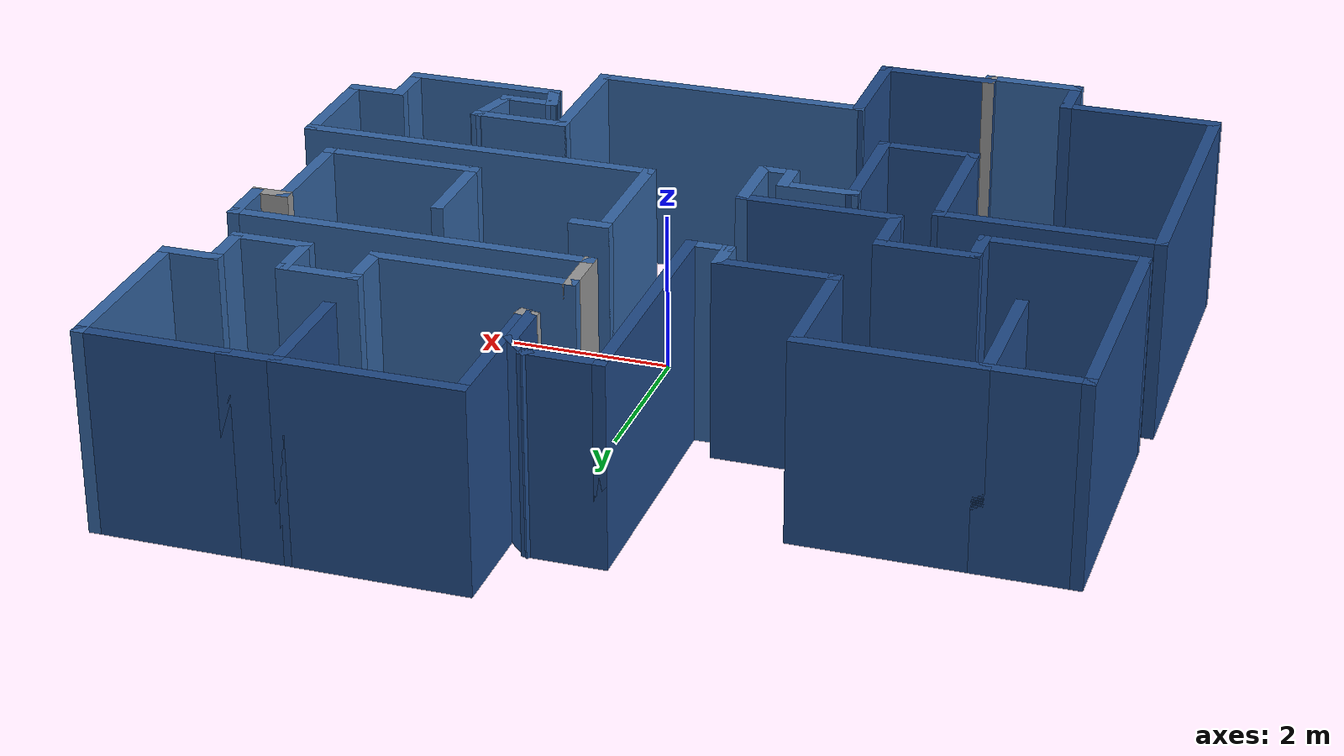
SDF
<?xml version='1.0'?>
<sdf version='1.6'>
  <model name='map_5'>
    <pose frame=''>-0.544386 0.714482 0 0 -0 0</pose>
    <link name='Wall_0'>
      <collision name='Wall_0_Collision'>
        <geometry>
          <box>
            <size>1.5 0.15 2.5</size>
          </box>
        </geometry>
        <pose frame=''>0 0 1.25 0 -0 0</pose>
      </collision>
      <visual name='Wall_0_Visual'>
        <pose frame=''>0 0 1.25 0 -0 0</pose>
        <geometry>
          <box>
            <size>1.5 0.15 2.5</size>
          </box>
        </geometry>
        <material>
          <script>
            <uri>file://media/materials/scripts/gazebo.material</uri>
            <name>Gazebo/Grey</name>
          </script>
          <ambient>0.12549 0.290196 0.529412 1</ambient>
        </material>
        <meta>
          <layer>0</layer>
        </meta>
      </visual>
      <pose frame=''>-1.72204 -4.86332 0 0 -0 3.14159</pose>
    </link>
    <link name='Wall_1'>
      <collision name='Wall_1_Collision'>
        <geometry>
          <box>
            <size>0.25 0.15 2.5</size>
          </box>
        </geometry>
        <pose frame=''>0 0 1.25 0 -0 0</pose>
      </collision>
      <visual name='Wall_1_Visual'>
        <pose frame=''>0 0 1.25 0 -0 0</pose>
        <geometry>
          <box>
            <size>0.25 0.15 2.5</size>
          </box>
        </geometry>
        <material>
          <script>
            <uri>file://media/materials/scripts/gazebo.material</uri>
            <name>Gazebo/Grey</name>
          </script>
          <ambient>1 1 1 1</ambient>
        </material>
        <meta>
          <layer>0</layer>
        </meta>
      </visual>
      <pose frame=''>-2.39704 -4.91331 0 0 -0 -1.5708</pose>
    </link>
    <link name='Wall_10'>
      <collision name='Wall_10_Collision'>
        <geometry>
          <box>
            <size>1 0.15 2.5</size>
          </box>
        </geometry>
        <pose frame=''>0 0 1.25 0 -0 0</pose>
      </collision>
      <visual name='Wall_10_Visual'>
        <pose frame=''>0 0 1.25 0 -0 0</pose>
        <geometry>
          <box>
            <size>1 0.15 2.5</size>
          </box>
        </geometry>
        <material>
          <script>
            <uri>file://media/materials/scripts/gazebo.material</uri>
            <name>Gazebo/Grey</name>
          </script>
          <ambient>0.203922 0.396078 0.643137 1</ambient>
        </material>
        <meta>
          <layer>0</layer>
        </meta>
      </visual>
      <pose frame=''>-1.22204 -1.01331 0 0 -0 0</pose>
    </link>
    <link name='Wall_11'>
      <collision name='Wall_11_Collision'>
        <geometry>
          <box>
            <size>0.5 0.15 2.5</size>
          </box>
        </geometry>
        <pose frame=''>0 0 1.25 0 -0 0</pose>
      </collision>
      <visual name='Wall_11_Visual'>
        <pose frame=''>0 0 1.25 0 -0 0</pose>
        <geometry>
          <box>
            <size>0.5 0.15 2.5</size>
          </box>
        </geometry>
        <material>
          <script>
            <uri>file://media/materials/scripts/gazebo.material</uri>
            <name>Gazebo/Grey</name>
          </script>
          <ambient>0.203922 0.396078 0.643137 1</ambient>
        </material>
        <meta>
          <layer>0</layer>
        </meta>
      </visual>
      <pose frame=''>-0.79704 -1.18832 0 0 -0 -1.5708</pose>
    </link>
    <link name='Wall_12'>
      <collision name='Wall_12_Collision'>
        <geometry>
          <box>
            <size>0.5 0.15 2.5</size>
          </box>
        </geometry>
        <pose frame=''>0 0 1.25 0 -0 0</pose>
      </collision>
      <visual name='Wall_12_Visual'>
        <pose frame=''>0 0 1.25 0 -0 0</pose>
        <geometry>
          <box>
            <size>0.5 0.15 2.5</size>
          </box>
        </geometry>
        <material>
          <script>
            <uri>file://media/materials/scripts/gazebo.material</uri>
            <name>Gazebo/Grey</name>
          </script>
          <ambient>0.203922 0.396078 0.643137 1</ambient>
        </material>
        <meta>
          <layer>0</layer>
        </meta>
      </visual>
      <pose frame=''>-0.62204 -1.36332 0 0 -0 0</pose>
    </link>
    <link name='Wall_13'>
      <collision name='Wall_13_Collision'>
        <geometry>
          <box>
            <size>1 0.15 2.5</size>
          </box>
        </geometry>
        <pose frame=''>0 0 1.25 0 -0 0</pose>
      </collision>
      <visual name='Wall_13_Visual'>
        <pose frame=''>0 0 1.25 0 -0 0</pose>
        <geometry>
          <box>
            <size>1 0.15 2.5</size>
          </box>
        </geometry>
        <material>
          <script>
            <uri>file://media/materials/scripts/gazebo.material</uri>
            <name>Gazebo/Grey</name>
          </script>
          <ambient>0.203922 0.396078 0.643137 1</ambient>
        </material>
        <meta>
          <layer>0</layer>
        </meta>
      </visual>
      <pose frame=''>-0.44704 -0.938315 0 0 -0 1.5708</pose>
    </link>
    <link name='Wall_14'>
      <collision name='Wall_14_Collision'>
        <geometry>
          <box>
            <size>2 0.15 2.5</size>
          </box>
        </geometry>
        <pose frame=''>0 0 1.25 0 -0 0</pose>
      </collision>
      <visual name='Wall_14_Visual'>
        <pose frame=''>0 0 1.25 0 -0 0</pose>
        <geometry>
          <box>
            <size>2 0.15 2.5</size>
          </box>
        </geometry>
        <material>
          <script>
            <uri>file://media/materials/scripts/gazebo.material</uri>
            <name>Gazebo/Grey</name>
          </script>
          <ambient>0.12549 0.290196 0.529412 1</ambient>
        </material>
        <meta>
          <layer>0</layer>
        </meta>
      </visual>
      <pose frame=''>-1.37204 -0.513315 0 0 -0 3.14159</pose>
    </link>
    <link name='Wall_15'>
      <collision name='Wall_15_Collision'>
        <geometry>
          <box>
            <size>0.847049 0.15 2.5</size>
          </box>
        </geometry>
        <pose frame=''>0 0 1.25 0 -0 0</pose>
      </collision>
      <visual name='Wall_15_Visual'>
        <pose frame=''>0 0 1.25 0 -0 0</pose>
        <geometry>
          <box>
            <size>0.847049 0.15 2.5</size>
          </box>
        </geometry>
        <material>
          <script>
            <uri>file://media/materials/scripts/gazebo.material</uri>
            <name>Gazebo/Grey</name>
          </script>
          <ambient>0.12549 0.290196 0.529412 1</ambient>
        </material>
        <meta>
          <layer>0</layer>
        </meta>
      </visual>
      <pose frame=''>-2.29704 -0.164791 0 0 -0 1.5708</pose>
    </link>
    <link name='Wall_16'>
      <collision name='Wall_16_Collision'>
        <geometry>
          <box>
            <size>1.25 0.15 2.5</size>
          </box>
        </geometry>
        <pose frame=''>0 0 1.25 0 -0 0</pose>
      </collision>
      <visual name='Wall_16_Visual'>
        <pose frame=''>0 0 1.25 0 -0 0</pose>
        <geometry>
          <box>
            <size>1.25 0.15 2.5</size>
          </box>
        </geometry>
        <material>
          <script>
            <uri>file://media/materials/scripts/gazebo.material</uri>
            <name>Gazebo/Grey</name>
          </script>
          <ambient>0.12549 0.290196 0.529412 1</ambient>
        </material>
        <meta>
          <layer>0</layer>
        </meta>
      </visual>
      <pose frame=''>-2.84704 0.214324 0 0 -0 3.14159</pose>
    </link>
    <link name='Wall_17'>
      <collision name='Wall_17_Collision'>
        <geometry>
          <box>
            <size>0.597049 0.15 2.5</size>
          </box>
        </geometry>
        <pose frame=''>0 0 1.25 0 -0 0</pose>
      </collision>
      <visual name='Wall_17_Visual'>
        <pose frame=''>0 0 1.25 0 -0 0</pose>
        <geometry>
          <box>
            <size>0.597049 0.15 2.5</size>
          </box>
        </geometry>
        <material>
          <script>
            <uri>file://media/materials/scripts/gazebo.material</uri>
            <name>Gazebo/Grey</name>
          </script>
          <ambient>0.12549 0.290196 0.529412 1</ambient>
        </material>
        <meta>
          <layer>0</layer>
        </meta>
      </visual>
      <pose frame=''>-3.39704 -0.039791 0 0 -0 -1.5708</pose>
    </link>
    <link name='Wall_18'>
      <collision name='Wall_18_Collision'>
        <geometry>
          <box>
            <size>2 0.15 2.5</size>
          </box>
        </geometry>
        <pose frame=''>0 0 1.25 0 -0 0</pose>
      </collision>
      <visual name='Wall_18_Visual'>
        <pose frame=''>0 0 1.25 0 -0 0</pose>
        <geometry>
          <box>
            <size>2 0.15 2.5</size>
          </box>
        </geometry>
        <material>
          <script>
            <uri>file://media/materials/scripts/gazebo.material</uri>
            <name>Gazebo/Grey</name>
          </script>
          <ambient>0.12549 0.290196 0.529412 1</ambient>
        </material>
        <meta>
          <layer>0</layer>
        </meta>
      </visual>
      <pose frame=''>-4.32204 -0.263315 0 0 -0 3.14159</pose>
    </link>
    <link name='Wall_19'>
      <collision name='Wall_19_Collision'>
        <geometry>
          <box>
            <size>3.25 0.15 2.5</size>
          </box>
        </geometry>
        <pose frame=''>0 0 1.25 0 -0 0</pose>
      </collision>
      <visual name='Wall_19_Visual'>
        <pose frame=''>0 0 1.25 0 -0 0</pose>
        <geometry>
          <box>
            <size>3.25 0.15 2.5</size>
          </box>
        </geometry>
        <material>
          <script>
            <uri>file://media/materials/scripts/gazebo.material</uri>
            <name>Gazebo/Grey</name>
          </script>
          <ambient>0.12549 0.290196 0.529412 1</ambient>
        </material>
        <meta>
          <layer>0</layer>
        </meta>
      </visual>
      <pose frame=''>-5.24704 1.28669 0 0 -0 1.5708</pose>
    </link>
    <link name='Wall_2'>
      <collision name='Wall_2_Collision'>
        <geometry>
          <box>
            <size>1.25 0.15 2.5</size>
          </box>
        </geometry>
        <pose frame=''>0 0 1.25 0 -0 0</pose>
      </collision>
      <visual name='Wall_2_Visual'>
        <pose frame=''>0 0 1.25 0 -0 0</pose>
        <geometry>
          <box>
            <size>1.25 0.15 2.5</size>
          </box>
        </geometry>
        <material>
          <script>
            <uri>file://media/materials/scripts/gazebo.material</uri>
            <name>Gazebo/Grey</name>
          </script>
          <ambient>0.203922 0.396078 0.643137 1</ambient>
        </material>
        <meta>
          <layer>0</layer>
        </meta>
      </visual>
      <pose frame=''>-2.94704 -4.96331 0 0 -0 3.14159</pose>
    </link>
    <link name='Wall_20'>
      <collision name='Wall_20_Collision'>
        <geometry>
          <box>
            <size>1.27531 0.15 2.5</size>
          </box>
        </geometry>
        <pose frame=''>0 0 1.25 0 -0 0</pose>
      </collision>
      <visual name='Wall_20_Visual'>
        <pose frame=''>0 0 1.25 0 -0 0</pose>
        <geometry>
          <box>
            <size>1.27531 0.15 2.5</size>
          </box>
        </geometry>
        <material>
          <script>
            <uri>file://media/materials/scripts/gazebo.material</uri>
            <name>Gazebo/Grey</name>
          </script>
          <ambient>0.12549 0.290196 0.529412 1</ambient>
        </material>
        <meta>
          <layer>0</layer>
        </meta>
      </visual>
      <pose frame=''>-4.68438 2.83669 0 0 -0 0</pose>
    </link>
    <link name='Wall_21'>
      <collision name='Wall_21_Collision'>
        <geometry>
          <box>
            <size>1.75 0.15 2.5</size>
          </box>
        </geometry>
        <pose frame=''>0 0 1.25 0 -0 0</pose>
      </collision>
      <visual name='Wall_21_Visual'>
        <pose frame=''>0 0 1.25 0 -0 0</pose>
        <geometry>
          <box>
            <size>1.75 0.15 2.5</size>
          </box>
        </geometry>
        <material>
          <script>
            <uri>file://media/materials/scripts/gazebo.material</uri>
            <name>Gazebo/Grey</name>
          </script>
          <ambient>0.12549 0.290196 0.529412 1</ambient>
        </material>
        <meta>
          <layer>0</layer>
        </meta>
      </visual>
      <pose frame=''>-4.15232 2.03668 0 0 -0 -1.5708</pose>
    </link>
    <link name='Wall_23'>
      <collision name='Wall_23_Collision'>
        <geometry>
          <box>
            <size>2.22469 0.15 2.5</size>
          </box>
        </geometry>
        <pose frame=''>0 0 1.25 0 -0 0</pose>
      </collision>
      <visual name='Wall_23_Visual'>
        <pose frame=''>0 0 1.25 0 -0 0</pose>
        <geometry>
          <box>
            <size>2.22469 0.15 2.5</size>
          </box>
        </geometry>
        <material>
          <script>
            <uri>file://media/materials/scripts/gazebo.material</uri>
            <name>Gazebo/Grey</name>
          </script>
          <ambient>0.12549 0.290196 0.529412 1</ambient>
        </material>
        <meta>
          <layer>0</layer>
        </meta>
      </visual>
      <pose frame=''>-3.08438 2.83669 0 0 -0 0</pose>
    </link>
    <link name='Wall_27'>
      <collision name='Wall_27_Collision'>
        <geometry>
          <box>
            <size>1.75 0.15 2.5</size>
          </box>
        </geometry>
        <pose frame=''>0 0 1.25 0 -0 0</pose>
      </collision>
      <visual name='Wall_27_Visual'>
        <pose frame=''>0 0 1.25 0 -0 0</pose>
        <geometry>
          <box>
            <size>1.75 0.15 2.5</size>
          </box>
        </geometry>
        <material>
          <script>
            <uri>file://media/materials/scripts/gazebo.material</uri>
            <name>Gazebo/Grey</name>
          </script>
          <ambient>0.12549 0.290196 0.529412 1</ambient>
        </material>
        <meta>
          <layer>0</layer>
        </meta>
      </visual>
      <pose frame=''>-2.04704 2.03668 0 0 -0 -1.5708</pose>
    </link>
    <link name='Wall_28'>
      <collision name='Wall_28_Collision'>
        <geometry>
          <box>
            <size>1.5 0.15 2.5</size>
          </box>
        </geometry>
        <pose frame=''>0 0 1.25 0 -0 0</pose>
      </collision>
      <visual name='Wall_28_Visual'>
        <pose frame=''>0 0 1.25 0 -0 0</pose>
        <geometry>
          <box>
            <size>1.5 0.15 2.5</size>
          </box>
        </geometry>
        <material>
          <script>
            <uri>file://media/materials/scripts/gazebo.material</uri>
            <name>Gazebo/Grey</name>
          </script>
          <ambient>0.12549 0.290196 0.529412 1</ambient>
        </material>
        <meta>
          <layer>0</layer>
        </meta>
      </visual>
      <pose frame=''>-1.37204 1.23669 0 0 -0 0</pose>
    </link>
    <link name='Wall_29'>
      <collision name='Wall_29_Collision'>
        <geometry>
          <box>
            <size>0.5 0.15 2.5</size>
          </box>
        </geometry>
        <pose frame=''>0 0 1.25 0 -0 0</pose>
      </collision>
      <visual name='Wall_29_Visual'>
        <pose frame=''>0 0 1.25 0 -0 0</pose>
        <geometry>
          <box>
            <size>0.5 0.15 2.5</size>
          </box>
        </geometry>
        <material>
          <script>
            <uri>file://media/materials/scripts/gazebo.material</uri>
            <name>Gazebo/Grey</name>
          </script>
          <ambient>0.203922 0.396078 0.643137 1</ambient>
        </material>
        <meta>
          <layer>0</layer>
        </meta>
      </visual>
      <pose frame=''>-0.69704 1.06168 0 0 -0 -1.5708</pose>
    </link>
    <link name='Wall_3'>
      <collision name='Wall_3_Collision'>
        <geometry>
          <box>
            <size>0.75 0.15 2.5</size>
          </box>
        </geometry>
        <pose frame=''>0 0 1.25 0 -0 0</pose>
      </collision>
      <visual name='Wall_3_Visual'>
        <pose frame=''>0 0 1.25 0 -0 0</pose>
        <geometry>
          <box>
            <size>0.75 0.15 2.5</size>
          </box>
        </geometry>
        <material>
          <script>
            <uri>file://media/materials/scripts/gazebo.material</uri>
            <name>Gazebo/Grey</name>
          </script>
          <ambient>0.12549 0.290196 0.529412 1</ambient>
        </material>
        <meta>
          <layer>0</layer>
        </meta>
      </visual>
      <pose frame=''>-3.49704 -4.66331 0 0 -0 1.5708</pose>
    </link>
    <link name='Wall_30'>
      <collision name='Wall_30_Collision'>
        <geometry>
          <box>
            <size>0.25 0.15 2.5</size>
          </box>
        </geometry>
        <pose frame=''>0 0 1.25 0 -0 0</pose>
      </collision>
      <visual name='Wall_30_Visual'>
        <pose frame=''>0 0 1.25 0 -0 0</pose>
        <geometry>
          <box>
            <size>0.25 0.15 2.5</size>
          </box>
        </geometry>
        <material>
          <script>
            <uri>file://media/materials/scripts/gazebo.material</uri>
            <name>Gazebo/Grey</name>
          </script>
          <ambient>0.203922 0.396078 0.643137 1</ambient>
        </material>
        <meta>
          <layer>0</layer>
        </meta>
      </visual>
      <pose frame=''>-0.64704 0.886685 0 0 -0 0</pose>
    </link>
    <link name='Wall_31'>
      <collision name='Wall_31_Collision'>
        <geometry>
          <box>
            <size>0.5 0.15 2.5</size>
          </box>
        </geometry>
        <pose frame=''>0 0 1.25 0 -0 0</pose>
      </collision>
      <visual name='Wall_31_Visual'>
        <pose frame=''>0 0 1.25 0 -0 0</pose>
        <geometry>
          <box>
            <size>0.5 0.15 2.5</size>
          </box>
        </geometry>
        <material>
          <script>
            <uri>file://media/materials/scripts/gazebo.material</uri>
            <name>Gazebo/Grey</name>
          </script>
          <ambient>0.203922 0.396078 0.643137 1</ambient>
        </material>
        <meta>
          <layer>0</layer>
        </meta>
      </visual>
      <pose frame=''>-0.42204 0.886685 0 0 -0 0</pose>
    </link>
    <link name='Wall_32'>
      <collision name='Wall_32_Collision'>
        <geometry>
          <box>
            <size>3.25 0.15 2.5</size>
          </box>
        </geometry>
        <pose frame=''>0 0 1.25 0 -0 0</pose>
      </collision>
      <visual name='Wall_32_Visual'>
        <pose frame=''>0 0 1.25 0 -0 0</pose>
        <geometry>
          <box>
            <size>3.25 0.15 2.5</size>
          </box>
        </geometry>
        <material>
          <script>
            <uri>file://media/materials/scripts/gazebo.material</uri>
            <name>Gazebo/Grey</name>
          </script>
          <ambient>0.12549 0.290196 0.529412 1</ambient>
        </material>
        <meta>
          <layer>0</layer>
        </meta>
      </visual>
      <pose frame=''>-0.24704 2.43669 0 0 -0 1.5708</pose>
    </link>
    <link name='Wall_33'>
      <collision name='Wall_33_Collision'>
        <geometry>
          <box>
            <size>1 0.15 2.5</size>
          </box>
        </geometry>
        <pose frame=''>0 0 1.25 0 -0 0</pose>
      </collision>
      <visual name='Wall_33_Visual'>
        <pose frame=''>0 0 1.25 0 -0 0</pose>
        <geometry>
          <box>
            <size>1 0.15 2.5</size>
          </box>
        </geometry>
        <material>
          <script>
            <uri>file://media/materials/scripts/gazebo.material</uri>
            <name>Gazebo/Grey</name>
          </script>
          <ambient>0.12549 0.290196 0.529412 1</ambient>
        </material>
        <meta>
          <layer>0</layer>
        </meta>
      </visual>
      <pose frame=''>0.17796 3.98669 0 0 -0 0</pose>
    </link>
    <link name='Wall_34'>
      <collision name='Wall_34_Collision'>
        <geometry>
          <box>
            <size>0.5 0.15 2.5</size>
          </box>
        </geometry>
        <pose frame=''>0 0 1.25 0 -0 0</pose>
      </collision>
      <visual name='Wall_34_Visual'>
        <pose frame=''>0 0 1.25 0 -0 0</pose>
        <geometry>
          <box>
            <size>0.5 0.15 2.5</size>
          </box>
        </geometry>
        <material>
          <script>
            <uri>file://media/materials/scripts/gazebo.material</uri>
            <name>Gazebo/Grey</name>
          </script>
          <ambient>0.12549 0.290196 0.529412 1</ambient>
        </material>
        <meta>
          <layer>0</layer>
        </meta>
      </visual>
      <pose frame=''>0.726704 3.86294 0 0 -0 -0.785398</pose>
    </link>
    <link name='Wall_35'>
      <collision name='Wall_35_Collision'>
        <geometry>
          <box>
            <size>0.75 0.15 2.5</size>
          </box>
        </geometry>
        <pose frame=''>0 0 1.25 0 -0 0</pose>
      </collision>
      <visual name='Wall_35_Visual'>
        <pose frame=''>0 0 1.25 0 -0 0</pose>
        <geometry>
          <box>
            <size>0.75 0.15 2.5</size>
          </box>
        </geometry>
        <material>
          <script>
            <uri>file://media/materials/scripts/gazebo.material</uri>
            <name>Gazebo/Grey</name>
          </script>
          <ambient>0.12549 0.290196 0.529412 1</ambient>
        </material>
        <meta>
          <layer>0</layer>
        </meta>
      </visual>
      <pose frame=''>0.850447 3.4392 0 0 -0 -1.5708</pose>
    </link>
    <link name='Wall_36'>
      <collision name='Wall_36_Collision'>
        <geometry>
          <box>
            <size>0.25 0.15 2.5</size>
          </box>
        </geometry>
        <pose frame=''>0 0 1.25 0 -0 0</pose>
      </collision>
      <visual name='Wall_36_Visual'>
        <pose frame=''>0 0 1.25 0 -0 0</pose>
        <geometry>
          <box>
            <size>0.25 0.15 2.5</size>
          </box>
        </geometry>
        <material>
          <script>
            <uri>file://media/materials/scripts/gazebo.material</uri>
            <name>Gazebo/Grey</name>
          </script>
          <ambient>1 1 1 1</ambient>
        </material>
        <meta>
          <layer>0</layer>
        </meta>
      </visual>
      <pose frame=''>0.898744 3.12626 0 0 -0 -0.261799</pose>
    </link>
    <link name='Wall_37'>
      <collision name='Wall_37_Collision'>
        <geometry>
          <box>
            <size>2 0.15 2.5</size>
          </box>
        </geometry>
        <pose frame=''>0 0 1.25 0 -0 0</pose>
      </collision>
      <visual name='Wall_37_Visual'>
        <pose frame=''>0 0 1.25 0 -0 0</pose>
        <geometry>
          <box>
            <size>2 0.15 2.5</size>
          </box>
        </geometry>
        <material>
          <script>
            <uri>file://media/materials/scripts/gazebo.material</uri>
            <name>Gazebo/Grey</name>
          </script>
          <ambient>0.12549 0.290196 0.529412 1</ambient>
        </material>
        <meta>
          <layer>0</layer>
        </meta>
      </visual>
      <pose frame=''>0.94704 4.03831 0 0 -0 1.5708</pose>
    </link>
    <link name='Wall_38'>
      <collision name='Wall_38_Collision'>
        <geometry>
          <box>
            <size>2.25 0.15 2.5</size>
          </box>
        </geometry>
        <pose frame=''>0 0 1.25 0 -0 0</pose>
      </collision>
      <visual name='Wall_38_Visual'>
        <pose frame=''>0 0 1.25 0 -0 0</pose>
        <geometry>
          <box>
            <size>2.25 0.15 2.5</size>
          </box>
        </geometry>
        <material>
          <script>
            <uri>file://media/materials/scripts/gazebo.material</uri>
            <name>Gazebo/Grey</name>
          </script>
          <ambient>0.12549 0.290196 0.529412 1</ambient>
        </material>
        <meta>
          <layer>0</layer>
        </meta>
      </visual>
      <pose frame=''>1.99704 4.96331 0 0 -0 0</pose>
    </link>
    <link name='Wall_39'>
      <collision name='Wall_39_Collision'>
        <geometry>
          <box>
            <size>1.5 0.15 2.5</size>
          </box>
        </geometry>
        <pose frame=''>0 0 1.25 0 -0 0</pose>
      </collision>
      <visual name='Wall_39_Visual'>
        <pose frame=''>0 0 1.25 0 -0 0</pose>
        <geometry>
          <box>
            <size>1.5 0.15 2.5</size>
          </box>
        </geometry>
        <material>
          <script>
            <uri>file://media/materials/scripts/gazebo.material</uri>
            <name>Gazebo/Grey</name>
          </script>
          <ambient>0.12549 0.290196 0.529412 1</ambient>
        </material>
        <meta>
          <layer>0</layer>
        </meta>
      </visual>
      <pose frame=''>3.04704 4.28831 0 0 -0 -1.5708</pose>
    </link>
    <link name='Wall_4'>
      <collision name='Wall_4_Collision'>
        <geometry>
          <box>
            <size>2 0.15 2.5</size>
          </box>
        </geometry>
        <pose frame=''>0 0 1.25 0 -0 0</pose>
      </collision>
      <visual name='Wall_4_Visual'>
        <pose frame=''>0 0 1.25 0 -0 0</pose>
        <geometry>
          <box>
            <size>2 0.15 2.5</size>
          </box>
        </geometry>
        <material>
          <script>
            <uri>file://media/materials/scripts/gazebo.material</uri>
            <name>Gazebo/Grey</name>
          </script>
          <ambient>0.12549 0.290196 0.529412 1</ambient>
        </material>
        <meta>
          <layer>0</layer>
        </meta>
      </visual>
      <pose frame=''>-4.42204 -4.36332 0 0 -0 3.14159</pose>
    </link>
    <link name='Wall_41'>
      <collision name='Wall_41_Collision'>
        <geometry>
          <box>
            <size>0.75 0.15 2.5</size>
          </box>
        </geometry>
        <pose frame=''>0 0 1.25 0 -0 0</pose>
      </collision>
      <visual name='Wall_41_Visual'>
        <pose frame=''>0 0 1.25 0 -0 0</pose>
        <geometry>
          <box>
            <size>0.75 0.15 2.5</size>
          </box>
        </geometry>
        <material>
          <script>
            <uri>file://media/materials/scripts/gazebo.material</uri>
            <name>Gazebo/Grey</name>
          </script>
          <ambient>0.12549 0.290196 0.529412 1</ambient>
        </material>
        <meta>
          <layer>0</layer>
        </meta>
      </visual>
      <pose frame=''>3.34704 4.96331 0 0 -0 0</pose>
    </link>
    <link name='Wall_46'>
      <collision name='Wall_46_Collision'>
        <geometry>
          <box>
            <size>2.25 0.15 2.5</size>
          </box>
        </geometry>
        <pose frame=''>0 0 1.25 0 -0 0</pose>
      </collision>
      <visual name='Wall_46_Visual'>
        <pose frame=''>0 0 1.25 0 -0 0</pose>
        <geometry>
          <box>
            <size>2.25 0.15 2.5</size>
          </box>
        </geometry>
        <material>
          <script>
            <uri>file://media/materials/scripts/gazebo.material</uri>
            <name>Gazebo/Grey</name>
          </script>
          <ambient>0.203922 0.396078 0.643137 1</ambient>
        </material>
        <meta>
          <layer>0</layer>
        </meta>
      </visual>
      <pose frame=''>5.34704 3.91331 0 0 -0 -1.5708</pose>
    </link>
    <link name='Wall_47'>
      <collision name='Wall_47_Collision'>
        <geometry>
          <box>
            <size>0.75 0.15 2.5</size>
          </box>
        </geometry>
        <pose frame=''>0 0 1.25 0 -0 0</pose>
      </collision>
      <visual name='Wall_47_Visual'>
        <pose frame=''>0 0 1.25 0 -0 0</pose>
        <geometry>
          <box>
            <size>0.75 0.15 2.5</size>
          </box>
        </geometry>
        <material>
          <script>
            <uri>file://media/materials/scripts/gazebo.material</uri>
            <name>Gazebo/Grey</name>
          </script>
          <ambient>0.203922 0.396078 0.643137 1</ambient>
        </material>
        <meta>
          <layer>0</layer>
        </meta>
      </visual>
      <pose frame=''>5.04704 2.86332 0 0 -0 3.14159</pose>
    </link>
    <link name='Wall_48'>
      <collision name='Wall_48_Collision'>
        <geometry>
          <box>
            <size>0.75 0.15 2.5</size>
          </box>
        </geometry>
        <pose frame=''>0 0 1.25 0 -0 0</pose>
      </collision>
      <visual name='Wall_48_Visual'>
        <pose frame=''>0 0 1.25 0 -0 0</pose>
        <geometry>
          <box>
            <size>0.75 0.15 2.5</size>
          </box>
        </geometry>
        <material>
          <script>
            <uri>file://media/materials/scripts/gazebo.material</uri>
            <name>Gazebo/Grey</name>
          </script>
          <ambient>0.203922 0.396078 0.643137 1</ambient>
        </material>
        <meta>
          <layer>0</layer>
        </meta>
      </visual>
      <pose frame=''>4.74704 2.56331 0 0 -0 -1.5708</pose>
    </link>
    <link name='Wall_49'>
      <collision name='Wall_49_Collision'>
        <geometry>
          <box>
            <size>1 0.15 2.5</size>
          </box>
        </geometry>
        <pose frame=''>0 0 1.25 0 -0 0</pose>
      </collision>
      <visual name='Wall_49_Visual'>
        <pose frame=''>0 0 1.25 0 -0 0</pose>
        <geometry>
          <box>
            <size>1 0.15 2.5</size>
          </box>
        </geometry>
        <material>
          <script>
            <uri>file://media/materials/scripts/gazebo.material</uri>
            <name>Gazebo/Grey</name>
          </script>
          <ambient>0.203922 0.396078 0.643137 1</ambient>
        </material>
        <meta>
          <layer>0</layer>
        </meta>
      </visual>
      <pose frame=''>4.32204 2.26331 0 0 -0 3.14159</pose>
    </link>
    <link name='Wall_5'>
      <collision name='Wall_5_Collision'>
        <geometry>
          <box>
            <size>3.75 0.15 2.5</size>
          </box>
        </geometry>
        <pose frame=''>0 0 1.25 0 -0 0</pose>
      </collision>
      <visual name='Wall_5_Visual'>
        <pose frame=''>0 0 1.25 0 -0 0</pose>
        <geometry>
          <box>
            <size>3.75 0.15 2.5</size>
          </box>
        </geometry>
        <material>
          <script>
            <uri>file://media/materials/scripts/gazebo.material</uri>
            <name>Gazebo/Grey</name>
          </script>
          <ambient>0.12549 0.290196 0.529412 1</ambient>
        </material>
        <meta>
          <layer>0</layer>
        </meta>
      </visual>
      <pose frame=''>-5.34704 -2.56331 0 0 -0 1.5708</pose>
    </link>
    <link name='Wall_50'>
      <collision name='Wall_50_Collision'>
        <geometry>
          <box>
            <size>0.75 0.15 2.5</size>
          </box>
        </geometry>
        <pose frame=''>0 0 1.25 0 -0 0</pose>
      </collision>
      <visual name='Wall_50_Visual'>
        <pose frame=''>0 0 1.25 0 -0 0</pose>
        <geometry>
          <box>
            <size>0.75 0.15 2.5</size>
          </box>
        </geometry>
        <material>
          <script>
            <uri>file://media/materials/scripts/gazebo.material</uri>
            <name>Gazebo/Grey</name>
          </script>
          <ambient>0.203922 0.396078 0.643137 1</ambient>
        </material>
        <meta>
          <layer>0</layer>
        </meta>
      </visual>
      <pose frame=''>3.89704 2.56331 0 0 -0 1.5708</pose>
    </link>
    <link name='Wall_51'>
      <collision name='Wall_51_Collision'>
        <geometry>
          <box>
            <size>1 0.15 2.5</size>
          </box>
        </geometry>
        <pose frame=''>0 0 1.25 0 -0 0</pose>
      </collision>
      <visual name='Wall_51_Visual'>
        <pose frame=''>0 0 1.25 0 -0 0</pose>
        <geometry>
          <box>
            <size>1 0.15 2.5</size>
          </box>
        </geometry>
        <material>
          <script>
            <uri>file://media/materials/scripts/gazebo.material</uri>
            <name>Gazebo/Grey</name>
          </script>
          <ambient>0.203922 0.396078 0.643137 1</ambient>
        </material>
        <meta>
          <layer>0</layer>
        </meta>
      </visual>
      <pose frame=''>3.47204 2.86332 0 0 -0 3.14159</pose>
    </link>
    <link name='Wall_52'>
      <collision name='Wall_52_Collision'>
        <geometry>
          <box>
            <size>0.75 0.15 2.5</size>
          </box>
        </geometry>
        <pose frame=''>0 0 1.25 0 -0 0</pose>
      </collision>
      <visual name='Wall_52_Visual'>
        <pose frame=''>0 0 1.25 0 -0 0</pose>
        <geometry>
          <box>
            <size>0.75 0.15 2.5</size>
          </box>
        </geometry>
        <material>
          <script>
            <uri>file://media/materials/scripts/gazebo.material</uri>
            <name>Gazebo/Grey</name>
          </script>
          <ambient>0.203922 0.396078 0.643137 1</ambient>
        </material>
        <meta>
          <layer>0</layer>
        </meta>
      </visual>
      <pose frame=''>3.04704 2.56331 0 0 -0 -1.5708</pose>
    </link>
    <link name='Wall_53'>
      <collision name='Wall_53_Collision'>
        <geometry>
          <box>
            <size>2.5 0.15 2.5</size>
          </box>
        </geometry>
        <pose frame=''>0 0 1.25 0 -0 0</pose>
      </collision>
      <visual name='Wall_53_Visual'>
        <pose frame=''>0 0 1.25 0 -0 0</pose>
        <geometry>
          <box>
            <size>2.5 0.15 2.5</size>
          </box>
        </geometry>
        <material>
          <script>
            <uri>file://media/materials/scripts/gazebo.material</uri>
            <name>Gazebo/Grey</name>
          </script>
          <ambient>0.203922 0.396078 0.643137 1</ambient>
        </material>
        <meta>
          <layer>0</layer>
        </meta>
      </visual>
      <pose frame=''>1.87204 2.26331 0 0 -0 3.14159</pose>
    </link>
    <link name='Wall_54'>
      <collision name='Wall_54_Collision'>
        <geometry>
          <box>
            <size>0.75 0.15 2.5</size>
          </box>
        </geometry>
        <pose frame=''>0 0 1.25 0 -0 0</pose>
      </collision>
      <visual name='Wall_54_Visual'>
        <pose frame=''>0 0 1.25 0 -0 0</pose>
        <geometry>
          <box>
            <size>0.75 0.15 2.5</size>
          </box>
        </geometry>
        <material>
          <script>
            <uri>file://media/materials/scripts/gazebo.material</uri>
            <name>Gazebo/Grey</name>
          </script>
          <ambient>1 1 1 1</ambient>
        </material>
        <meta>
          <layer>0</layer>
        </meta>
      </visual>
      <pose frame=''>0.69704 1.96331 0 0 -0 -1.5708</pose>
    </link>
    <link name='Wall_55'>
      <collision name='Wall_55_Collision'>
        <geometry>
          <box>
            <size>4.5 0.15 2.5</size>
          </box>
        </geometry>
        <pose frame=''>0 0 1.25 0 -0 0</pose>
      </collision>
      <visual name='Wall_55_Visual'>
        <pose frame=''>0 0 1.25 0 -0 0</pose>
        <geometry>
          <box>
            <size>4.5 0.15 2.5</size>
          </box>
        </geometry>
        <material>
          <script>
            <uri>file://media/materials/scripts/gazebo.material</uri>
            <name>Gazebo/Grey</name>
          </script>
          <ambient>0.203922 0.396078 0.643137 1</ambient>
        </material>
        <meta>
          <layer>0</layer>
        </meta>
      </visual>
      <pose frame=''>2.87204 1.66332 0 0 -0 0</pose>
    </link>
    <link name='Wall_56'>
      <collision name='Wall_56_Collision'>
        <geometry>
          <box>
            <size>0.75 0.15 2.5</size>
          </box>
        </geometry>
        <pose frame=''>0 0 1.25 0 -0 0</pose>
      </collision>
      <visual name='Wall_56_Visual'>
        <pose frame=''>0 0 1.25 0 -0 0</pose>
        <geometry>
          <box>
            <size>0.75 0.15 2.5</size>
          </box>
        </geometry>
        <material>
          <script>
            <uri>file://media/materials/scripts/gazebo.material</uri>
            <name>Gazebo/Grey</name>
          </script>
          <ambient>0.203922 0.396078 0.643137 1</ambient>
        </material>
        <meta>
          <layer>0</layer>
        </meta>
      </visual>
      <pose frame=''>5.04704 1.36332 0 0 -0 -1.5708</pose>
    </link>
    <link name='Wall_57'>
      <collision name='Wall_57_Collision'>
        <geometry>
          <box>
            <size>0.5 0.15 2.5</size>
          </box>
        </geometry>
        <pose frame=''>0 0 1.25 0 -0 0</pose>
      </collision>
      <visual name='Wall_57_Visual'>
        <pose frame=''>0 0 1.25 0 -0 0</pose>
        <geometry>
          <box>
            <size>0.5 0.15 2.5</size>
          </box>
        </geometry>
        <material>
          <script>
            <uri>file://media/materials/scripts/gazebo.material</uri>
            <name>Gazebo/Grey</name>
          </script>
          <ambient>1 1 1 1</ambient>
        </material>
        <meta>
          <layer>0</layer>
        </meta>
      </visual>
      <pose frame=''>4.87204 1.06332 0 0 -0 3.14159</pose>
    </link>
    <link name='Wall_58'>
      <collision name='Wall_58_Collision'>
        <geometry>
          <box>
            <size>1.5 0.15 2.5</size>
          </box>
        </geometry>
        <pose frame=''>0 0 1.25 0 -0 0</pose>
      </collision>
      <visual name='Wall_58_Visual'>
        <pose frame=''>0 0 1.25 0 -0 0</pose>
        <geometry>
          <box>
            <size>1.5 0.15 2.5</size>
          </box>
        </geometry>
        <material>
          <script>
            <uri>file://media/materials/scripts/gazebo.material</uri>
            <name>Gazebo/Grey</name>
          </script>
          <ambient>0.203922 0.396078 0.643137 1</ambient>
        </material>
        <meta>
          <layer>0</layer>
        </meta>
      </visual>
      <pose frame=''>4.69704 0.388315 0 0 -0 -1.5708</pose>
    </link>
    <link name='Wall_59'>
      <collision name='Wall_59_Collision'>
        <geometry>
          <box>
            <size>2 0.15 2.5</size>
          </box>
        </geometry>
        <pose frame=''>0 0 1.25 0 -0 0</pose>
      </collision>
      <visual name='Wall_59_Visual'>
        <pose frame=''>0 0 1.25 0 -0 0</pose>
        <geometry>
          <box>
            <size>2 0.15 2.5</size>
          </box>
        </geometry>
        <material>
          <script>
            <uri>file://media/materials/scripts/gazebo.material</uri>
            <name>Gazebo/Grey</name>
          </script>
          <ambient>0.203922 0.396078 0.643137 1</ambient>
        </material>
        <meta>
          <layer>0</layer>
        </meta>
      </visual>
      <pose frame=''>3.77204 -0.286685 0 0 -0 3.14159</pose>
    </link>
    <link name='Wall_6'>
      <collision name='Wall_6_Collision'>
        <geometry>
          <box>
            <size>2.75 0.15 2.5</size>
          </box>
        </geometry>
        <pose frame=''>0 0 1.25 0 -0 0</pose>
      </collision>
      <visual name='Wall_6_Visual'>
        <pose frame=''>0 0 1.25 0 -0 0</pose>
        <geometry>
          <box>
            <size>2.75 0.15 2.5</size>
          </box>
        </geometry>
        <material>
          <script>
            <uri>file://media/materials/scripts/gazebo.material</uri>
            <name>Gazebo/Grey</name>
          </script>
          <ambient>0.12549 0.290196 0.529412 1</ambient>
        </material>
        <meta>
          <layer>0</layer>
        </meta>
      </visual>
      <pose frame=''>-4.04704 -0.763315 0 0 -0 0</pose>
    </link>
    <link name='Wall_60'>
      <collision name='Wall_60_Collision'>
        <geometry>
          <box>
            <size>1.25 0.15 2.5</size>
          </box>
        </geometry>
        <pose frame=''>0 0 1.25 0 -0 0</pose>
      </collision>
      <visual name='Wall_60_Visual'>
        <pose frame=''>0 0 1.25 0 -0 0</pose>
        <geometry>
          <box>
            <size>1.25 0.15 2.5</size>
          </box>
        </geometry>
        <material>
          <script>
            <uri>file://media/materials/scripts/gazebo.material</uri>
            <name>Gazebo/Grey</name>
          </script>
          <ambient>0.203922 0.396078 0.643137 1</ambient>
        </material>
        <meta>
          <layer>0</layer>
        </meta>
      </visual>
      <pose frame=''>2.84704 0.263315 0 0 -0 1.5708</pose>
    </link>
    <link name='Wall_64'>
      <collision name='Wall_64_Collision'>
        <geometry>
          <box>
            <size>0.5 0.15 2.5</size>
          </box>
        </geometry>
        <pose frame=''>0 0 1.25 0 -0 0</pose>
      </collision>
      <visual name='Wall_64_Visual'>
        <pose frame=''>0 0 1.25 0 -0 0</pose>
        <geometry>
          <box>
            <size>0.5 0.15 2.5</size>
          </box>
        </geometry>
        <material>
          <script>
            <uri>file://media/materials/scripts/gazebo.material</uri>
            <name>Gazebo/Grey</name>
          </script>
          <ambient>0.203922 0.396078 0.643137 1</ambient>
        </material>
        <meta>
          <layer>0</layer>
        </meta>
      </visual>
      <pose frame=''>1.01362 0.726503 0 0 -0 3.14159</pose>
    </link>
    <link name='Wall_65'>
      <collision name='Wall_65_Collision'>
        <geometry>
          <box>
            <size>1.75 0.15 2.5</size>
          </box>
        </geometry>
        <pose frame=''>0 0 1.25 0 -0 0</pose>
      </collision>
      <visual name='Wall_65_Visual'>
        <pose frame=''>0 0 1.25 0 -0 0</pose>
        <geometry>
          <box>
            <size>1.75 0.15 2.5</size>
          </box>
        </geometry>
        <material>
          <script>
            <uri>file://media/materials/scripts/gazebo.material</uri>
            <name>Gazebo/Grey</name>
          </script>
          <ambient>0.203922 0.396078 0.643137 1</ambient>
        </material>
        <meta>
          <layer>0</layer>
        </meta>
      </visual>
      <pose frame=''>0.838617 -0.073497 0 0 -0 -1.5708</pose>
    </link>
    <link name='Wall_66'>
      <collision name='Wall_66_Collision'>
        <geometry>
          <box>
            <size>4.5 0.15 2.5</size>
          </box>
        </geometry>
        <pose frame=''>0 0 1.25 0 -0 0</pose>
      </collision>
      <visual name='Wall_66_Visual'>
        <pose frame=''>0 0 1.25 0 -0 0</pose>
        <geometry>
          <box>
            <size>4.5 0.15 2.5</size>
          </box>
        </geometry>
        <material>
          <script>
            <uri>file://media/materials/scripts/gazebo.material</uri>
            <name>Gazebo/Grey</name>
          </script>
          <ambient>0.203922 0.396078 0.643137 1</ambient>
        </material>
        <meta>
          <layer>0</layer>
        </meta>
      </visual>
      <pose frame=''>3.01362 -0.873497 0 0 -0 0</pose>
    </link>
    <link name='Wall_67'>
      <collision name='Wall_67_Collision'>
        <geometry>
          <box>
            <size>1.5 0.15 2.5</size>
          </box>
        </geometry>
        <pose frame=''>0 0 1.25 0 -0 0</pose>
      </collision>
      <visual name='Wall_67_Visual'>
        <pose frame=''>0 0 1.25 0 -0 0</pose>
        <geometry>
          <box>
            <size>1.5 0.15 2.5</size>
          </box>
        </geometry>
        <material>
          <script>
            <uri>file://media/materials/scripts/gazebo.material</uri>
            <name>Gazebo/Grey</name>
          </script>
          <ambient>0.203922 0.396078 0.643137 1</ambient>
        </material>
        <meta>
          <layer>0</layer>
        </meta>
      </visual>
      <pose frame=''>5.18862 -1.5485 0 0 -0 -1.5708</pose>
    </link>
    <link name='Wall_68'>
      <collision name='Wall_68_Collision'>
        <geometry>
          <box>
            <size>0.75 0.15 2.5</size>
          </box>
        </geometry>
        <pose frame=''>0 0 1.25 0 -0 0</pose>
      </collision>
      <visual name='Wall_68_Visual'>
        <pose frame=''>0 0 1.25 0 -0 0</pose>
        <geometry>
          <box>
            <size>0.75 0.15 2.5</size>
          </box>
        </geometry>
        <material>
          <script>
            <uri>file://media/materials/scripts/gazebo.material</uri>
            <name>Gazebo/Grey</name>
          </script>
          <ambient>0.203922 0.396078 0.643137 1</ambient>
        </material>
        <meta>
          <layer>0</layer>
        </meta>
      </visual>
      <pose frame=''>4.88862 -2.2235 0 0 -0 3.14159</pose>
    </link>
    <link name='Wall_69'>
      <collision name='Wall_69_Collision'>
        <geometry>
          <box>
            <size>0.75 0.15 2.5</size>
          </box>
        </geometry>
        <pose frame=''>0 0 1.25 0 -0 0</pose>
      </collision>
      <visual name='Wall_69_Visual'>
        <pose frame=''>0 0 1.25 0 -0 0</pose>
        <geometry>
          <box>
            <size>0.75 0.15 2.5</size>
          </box>
        </geometry>
        <material>
          <script>
            <uri>file://media/materials/scripts/gazebo.material</uri>
            <name>Gazebo/Grey</name>
          </script>
          <ambient>0.203922 0.396078 0.643137 1</ambient>
        </material>
        <meta>
          <layer>0</layer>
        </meta>
      </visual>
      <pose frame=''>4.58862 -2.5235 0 0 -0 -1.5708</pose>
    </link>
    <link name='Wall_7'>
      <collision name='Wall_7_Collision'>
        <geometry>
          <box>
            <size>1.88506 0.15 2.5</size>
          </box>
        </geometry>
        <pose frame=''>0 0 1.25 0 -0 0</pose>
      </collision>
      <visual name='Wall_7_Visual'>
        <pose frame=''>0 0 1.25 0 -0 0</pose>
        <geometry>
          <box>
            <size>1.88506 0.15 2.5</size>
          </box>
        </geometry>
        <material>
          <script>
            <uri>file://media/materials/scripts/gazebo.material</uri>
            <name>Gazebo/Grey</name>
          </script>
          <ambient>0.12549 0.290196 0.529412 1</ambient>
        </material>
        <meta>
          <layer>0</layer>
        </meta>
      </visual>
      <pose frame=''>-2.73944 -1.63081 0 0 -0 -1.56203</pose>
    </link>
    <link name='Wall_70'>
      <collision name='Wall_70_Collision'>
        <geometry>
          <box>
            <size>2 0.15 2.5</size>
          </box>
        </geometry>
        <pose frame=''>0 0 1.25 0 -0 0</pose>
      </collision>
      <visual name='Wall_70_Visual'>
        <pose frame=''>0 0 1.25 0 -0 0</pose>
        <geometry>
          <box>
            <size>2 0.15 2.5</size>
          </box>
        </geometry>
        <material>
          <script>
            <uri>file://media/materials/scripts/gazebo.material</uri>
            <name>Gazebo/Grey</name>
          </script>
          <ambient>0.203922 0.396078 0.643137 1</ambient>
        </material>
        <meta>
          <layer>0</layer>
        </meta>
      </visual>
      <pose frame=''>3.66362 -2.8235 0 0 -0 3.14159</pose>
    </link>
    <link name='Wall_71'>
      <collision name='Wall_71_Collision'>
        <geometry>
          <box>
            <size>0.5 0.15 2.5</size>
          </box>
        </geometry>
        <pose frame=''>0 0 1.25 0 -0 0</pose>
      </collision>
      <visual name='Wall_71_Visual'>
        <pose frame=''>0 0 1.25 0 -0 0</pose>
        <geometry>
          <box>
            <size>0.5 0.15 2.5</size>
          </box>
        </geometry>
        <material>
          <script>
            <uri>file://media/materials/scripts/gazebo.material</uri>
            <name>Gazebo/Grey</name>
          </script>
          <ambient>0.203922 0.396078 0.643137 1</ambient>
        </material>
        <meta>
          <layer>0</layer>
        </meta>
      </visual>
      <pose frame=''>2.69332 -2.65446 0 0 -0 1.8326</pose>
    </link>
    <link name='Wall_72'>
      <collision name='Wall_72_Collision'>
        <geometry>
          <box>
            <size>0.75 0.15 2.5</size>
          </box>
        </geometry>
        <pose frame=''>0 0 1.25 0 -0 0</pose>
      </collision>
      <visual name='Wall_72_Visual'>
        <pose frame=''>0 0 1.25 0 -0 0</pose>
        <geometry>
          <box>
            <size>0.75 0.15 2.5</size>
          </box>
        </geometry>
        <material>
          <script>
            <uri>file://media/materials/scripts/gazebo.material</uri>
            <name>Gazebo/Grey</name>
          </script>
          <ambient>0.203922 0.396078 0.643137 1</ambient>
        </material>
        <meta>
          <layer>0</layer>
        </meta>
      </visual>
      <pose frame=''>2.94803 -2.48542 0 0 -0 0</pose>
    </link>
    <link name='Wall_73'>
      <collision name='Wall_73_Collision'>
        <geometry>
          <box>
            <size>0.75 0.15 2.5</size>
          </box>
        </geometry>
        <pose frame=''>0 0 1.25 0 -0 0</pose>
      </collision>
      <visual name='Wall_73_Visual'>
        <pose frame=''>0 0 1.25 0 -0 0</pose>
        <geometry>
          <box>
            <size>0.75 0.15 2.5</size>
          </box>
        </geometry>
        <material>
          <script>
            <uri>file://media/materials/scripts/gazebo.material</uri>
            <name>Gazebo/Grey</name>
          </script>
          <ambient>0.203922 0.396078 0.643137 1</ambient>
        </material>
        <meta>
          <layer>0</layer>
        </meta>
      </visual>
      <pose frame=''>3.32568 -2.19564 0 0 -0 1.309</pose>
    </link>
    <link name='Wall_74'>
      <collision name='Wall_74_Collision'>
        <geometry>
          <box>
            <size>1.25 0.15 2.5</size>
          </box>
        </geometry>
        <pose frame=''>0 0 1.25 0 -0 0</pose>
      </collision>
      <visual name='Wall_74_Visual'>
        <pose frame=''>0 0 1.25 0 -0 0</pose>
        <geometry>
          <box>
            <size>1.25 0.15 2.5</size>
          </box>
        </geometry>
        <material>
          <script>
            <uri>file://media/materials/scripts/gazebo.material</uri>
            <name>Gazebo/Grey</name>
          </script>
          <ambient>0.203922 0.396078 0.643137 1</ambient>
        </material>
        <meta>
          <layer>0</layer>
        </meta>
      </visual>
      <pose frame=''>2.85332 -1.90587 0 0 -0 3.14159</pose>
    </link>
    <link name='Wall_76'>
      <collision name='Wall_76_Collision'>
        <geometry>
          <box>
            <size>1.85 0.15 2.5</size>
          </box>
        </geometry>
        <pose frame=''>0 0 1.25 0 -0 0</pose>
      </collision>
      <visual name='Wall_76_Visual'>
        <pose frame=''>0 0 1.25 0 -0 0</pose>
        <geometry>
          <box>
            <size>1.85 0.15 2.5</size>
          </box>
        </geometry>
        <material>
          <script>
            <uri>file://media/materials/scripts/gazebo.material</uri>
            <name>Gazebo/Grey</name>
          </script>
          <ambient>0.12549 0.290196 0.529412 1</ambient>
        </material>
        <meta>
          <layer>0</layer>
        </meta>
      </visual>
      <pose frame=''>4.49704 4.96331 0 0 -0 0</pose>
    </link>
    <link name='Wall_78'>
      <collision name='Wall_78_Collision'>
        <geometry>
          <box>
            <size>1.75 0.15 2.5</size>
          </box>
        </geometry>
        <pose frame=''>0 0 1.25 0 -0 0</pose>
      </collision>
      <visual name='Wall_78_Visual'>
        <pose frame=''>0 0 1.25 0 -0 0</pose>
        <geometry>
          <box>
            <size>1.75 0.15 2.5</size>
          </box>
        </geometry>
        <material>
          <script>
            <uri>file://media/materials/scripts/gazebo.material</uri>
            <name>Gazebo/Grey</name>
          </script>
          <ambient>0.203922 0.396078 0.643137 1</ambient>
        </material>
        <meta>
          <layer>0</layer>
        </meta>
      </visual>
      <pose frame=''>2.30332 -2.70587 0 0 -0 -1.5708</pose>
    </link>
    <link name='Wall_79'>
      <collision name='Wall_79_Collision'>
        <geometry>
          <box>
            <size>3.5 0.15 2.5</size>
          </box>
        </geometry>
        <pose frame=''>0 0 1.25 0 -0 0</pose>
      </collision>
      <visual name='Wall_79_Visual'>
        <pose frame=''>0 0 1.25 0 -0 0</pose>
        <geometry>
          <box>
            <size>3.5 0.15 2.5</size>
          </box>
        </geometry>
        <material>
          <script>
            <uri>file://media/materials/scripts/gazebo.material</uri>
            <name>Gazebo/Grey</name>
          </script>
          <ambient>0.203922 0.396078 0.643137 1</ambient>
        </material>
        <meta>
          <layer>0</layer>
        </meta>
      </visual>
      <pose frame=''>0.628322 -3.50587 0 0 -0 3.14159</pose>
    </link>
    <link name='Wall_8'>
      <collision name='Wall_8_Collision'>
        <geometry>
          <box>
            <size>1.25 0.15 2.5</size>
          </box>
        </geometry>
        <pose frame=''>0 0 1.25 0 -0 0</pose>
      </collision>
      <visual name='Wall_8_Visual'>
        <pose frame=''>0 0 1.25 0 -0 0</pose>
        <geometry>
          <box>
            <size>1.25 0.15 2.5</size>
          </box>
        </geometry>
        <material>
          <script>
            <uri>file://media/materials/scripts/gazebo.material</uri>
            <name>Gazebo/Grey</name>
          </script>
          <ambient>0.12549 0.290196 0.529412 1</ambient>
        </material>
        <meta>
          <layer>0</layer>
        </meta>
      </visual>
      <pose frame=''>-2.18183 -2.51351 0 0 -0 0</pose>
    </link>
    <link name='Wall_87'>
      <collision name='Wall_87_Collision'>
        <geometry>
          <box>
            <size>1.50745 0.15 2.5</size>
          </box>
        </geometry>
        <pose frame=''>0 0 1.25 0 -0 0</pose>
      </collision>
      <visual name='Wall_87_Visual'>
        <pose frame=''>0 0 1.25 0 -0 0</pose>
        <geometry>
          <box>
            <size>1.50745 0.15 2.5</size>
          </box>
        </geometry>
        <material>
          <script>
            <uri>file://media/materials/scripts/gazebo.material</uri>
            <name>Gazebo/Grey</name>
          </script>
          <ambient>0.12549 0.290196 0.529412 1</ambient>
        </material>
        <meta>
          <layer>0</layer>
        </meta>
      </visual>
      <pose frame=''>-1.04686 -4.18459 0 0 -0 -1.57106</pose>
    </link>
    <link name='Wall_9'>
      <collision name='Wall_9_Collision'>
        <geometry>
          <box>
            <size>1.63507 0.15 2.5</size>
          </box>
        </geometry>
        <pose frame=''>0 0 1.25 0 -0 0</pose>
      </collision>
      <visual name='Wall_9_Visual'>
        <pose frame=''>0 0 1.25 0 -0 0</pose>
        <geometry>
          <box>
            <size>1.63507 0.15 2.5</size>
          </box>
        </geometry>
        <material>
          <script>
            <uri>file://media/materials/scripts/gazebo.material</uri>
            <name>Gazebo/Grey</name>
          </script>
          <ambient>0.12549 0.290196 0.529412 1</ambient>
        </material>
        <meta>
          <layer>0</layer>
        </meta>
      </visual>
      <pose frame=''>-1.63944 -1.75581 0 0 -0 1.58104</pose>
    </link>
    <static>1</static>
  </model>
</sdf>
